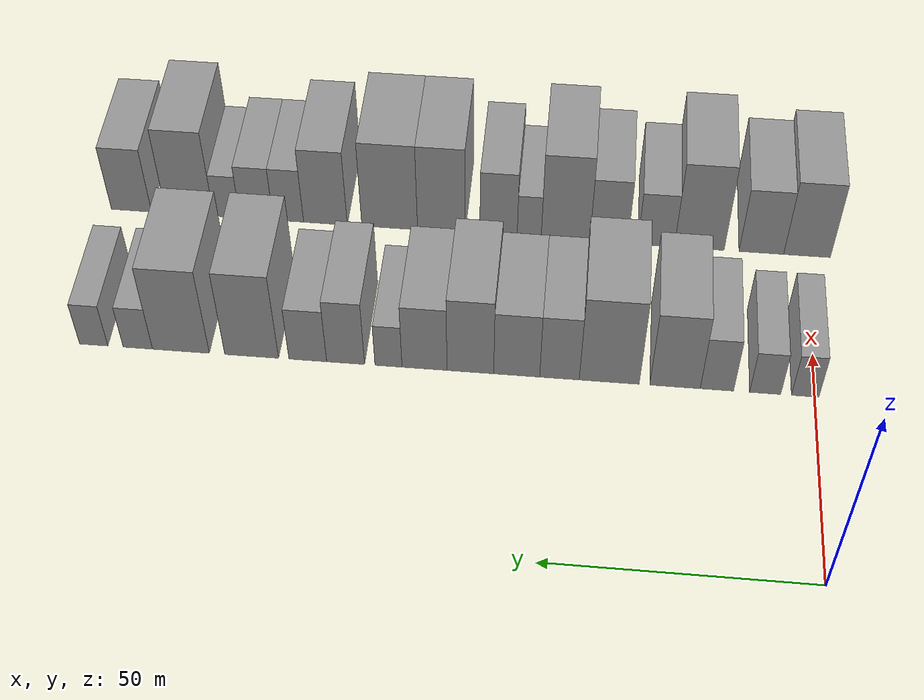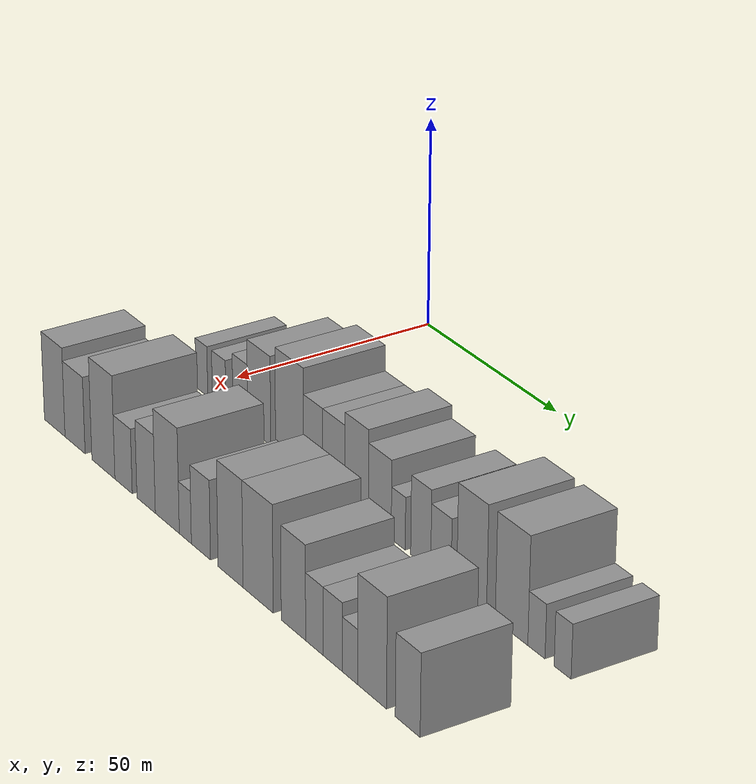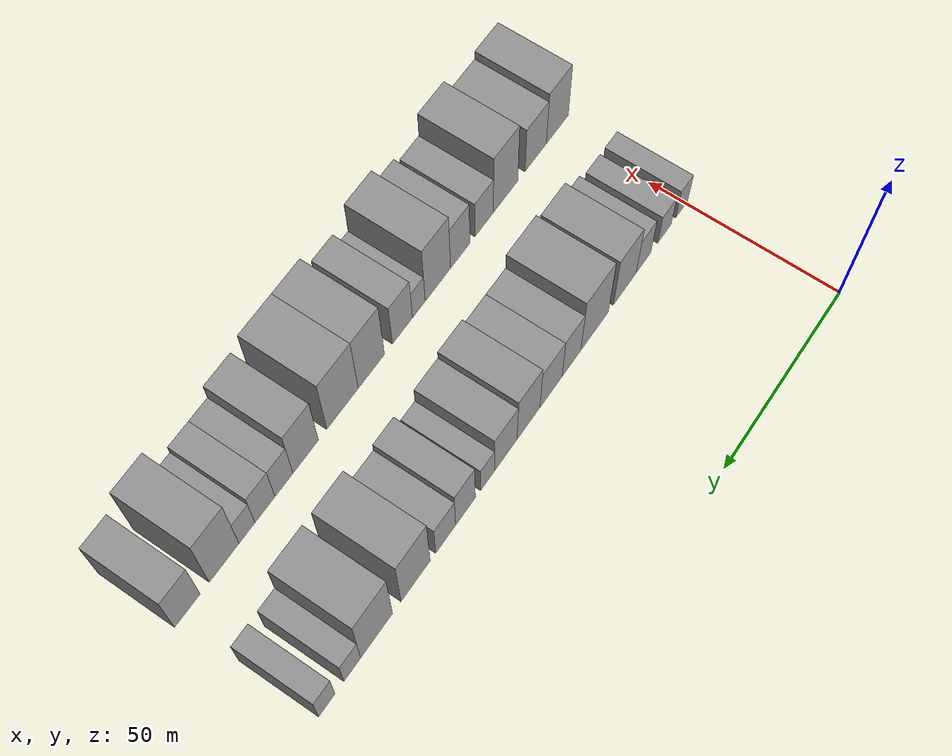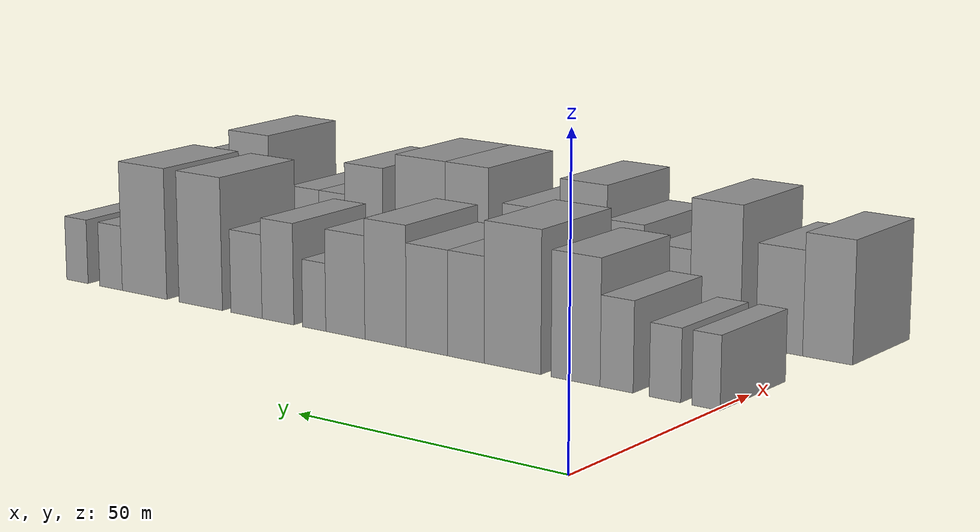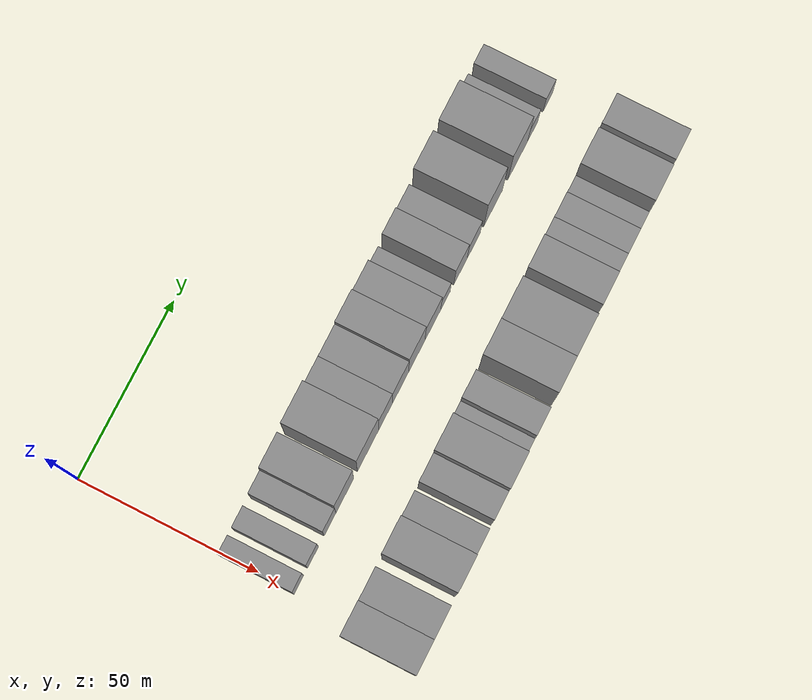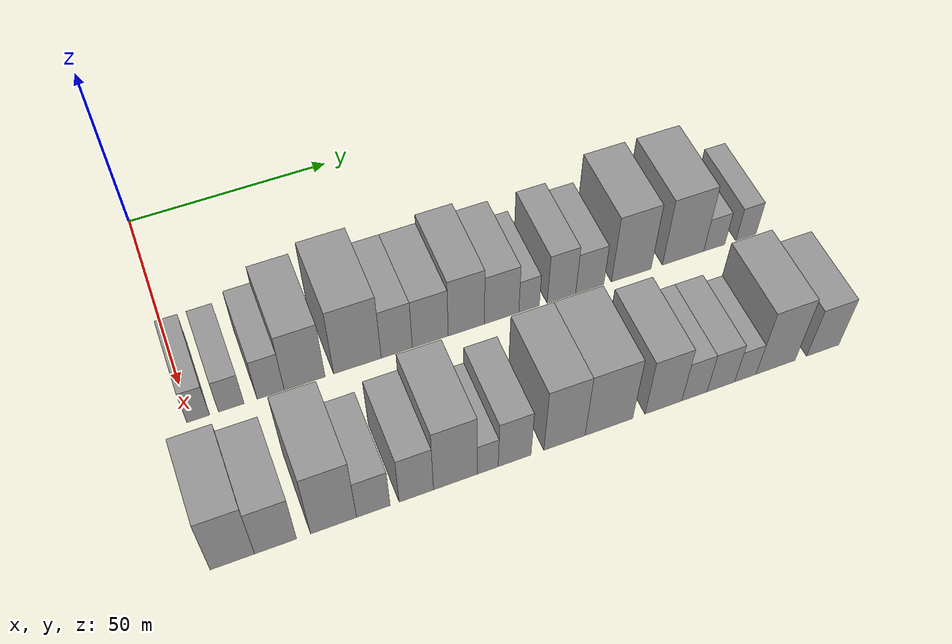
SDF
<sdf version="1.6">
 <world name="default">
  <model name="building_34">
   <static>1</static>
   <pose>50.0000 1.8342 0 0.000000 0.000000 0.000000</pose>
   <link name="link">
    <pose>0 0 6.00 0 0 0</pose>
    <collision name="collision"><geometry><box><size>20.0000 5.1160 12.0000</size></box></geometry></collision>
    <visual name="visual">
     <cast_shadows>0</cast_shadows>
     <geometry><box><size>20.0000 5.1160 12.0000</size></box></geometry>
     <material>
      <script>
       <uri>model://grey_wall/materials/scripts</uri>
       <uri>model://grey_wall/materials/textures</uri>
       <name>vrc/grey_wall</name>
      </script>
     </material>
    </visual>
   </link>
  </model>
  <model name="building_35">
   <static>1</static>
   <pose>50.0000 9.2959 0 0.000000 0.000000 0.000000</pose>
   <link name="link">
    <pose>0 0 6.00 0 0 0</pose>
    <collision name="collision"><geometry><box><size>20.0000 5.8074 12.0000</size></box></geometry></collision>
    <visual name="visual">
     <cast_shadows>0</cast_shadows>
     <geometry><box><size>20.0000 5.8074 12.0000</size></box></geometry>
     <material>
      <script>
       <uri>model://grey_wall/materials/scripts</uri>
       <uri>model://grey_wall/materials/textures</uri>
       <name>vrc/grey_wall</name>
      </script>
     </material>
    </visual>
   </link>
  </model>
  <model name="building_36">
   <static>1</static>
   <pose>50.0000 18.3228 0 0.000000 0.000000 0.000000</pose>
   <link name="link">
    <pose>0 0 7.50 0 0 0</pose>
    <collision name="collision"><geometry><box><size>20.0000 6.2464 15.0000</size></box></geometry></collision>
    <visual name="visual">
     <cast_shadows>0</cast_shadows>
     <geometry><box><size>20.0000 6.2464 15.0000</size></box></geometry>
     <material>
      <script>
       <uri>model://grey_wall/materials/scripts</uri>
       <uri>model://grey_wall/materials/textures</uri>
       <name>vrc/grey_wall</name>
      </script>
     </material>
    </visual>
   </link>
  </model>
  <model name="building_37">
   <static>1</static>
   <pose>50.0000 26.1882 0 0.000000 0.000000 0.000000</pose>
   <link name="link">
    <pose>0 0 10.50 0 0 0</pose>
    <collision name="collision"><geometry><box><size>20.0000 9.4845 21.0000</size></box></geometry></collision>
    <visual name="visual">
     <cast_shadows>0</cast_shadows>
     <geometry><box><size>20.0000 9.4845 21.0000</size></box></geometry>
     <material>
      <script>
       <uri>model://grey_wall/materials/scripts</uri>
       <uri>model://grey_wall/materials/textures</uri>
       <name>vrc/grey_wall</name>
      </script>
     </material>
    </visual>
   </link>
  </model>
  <model name="building_38">
   <static>1</static>
   <pose>50.0000 38.5877 0 0.000000 0.000000 0.000000</pose>
   <link name="link">
    <pose>0 0 12.00 0 0 0</pose>
    <collision name="collision"><geometry><box><size>20.0000 11.3144 24.0000</size></box></geometry></collision>
    <visual name="visual">
     <cast_shadows>0</cast_shadows>
     <geometry><box><size>20.0000 11.3144 24.0000</size></box></geometry>
     <material>
      <script>
       <uri>model://grey_wall/materials/scripts</uri>
       <uri>model://grey_wall/materials/textures</uri>
       <name>vrc/grey_wall</name>
      </script>
     </material>
    </visual>
   </link>
  </model>
  <model name="building_39">
   <static>1</static>
   <pose>50.0000 47.9888 0 0.000000 0.000000 0.000000</pose>
   <link name="link">
    <pose>0 0 9.00 0 0 0</pose>
    <collision name="collision"><geometry><box><size>20.0000 7.4880 18.0000</size></box></geometry></collision>
    <visual name="visual">
     <cast_shadows>0</cast_shadows>
     <geometry><box><size>20.0000 7.4880 18.0000</size></box></geometry>
     <material>
      <script>
       <uri>model://grey_wall/materials/scripts</uri>
       <uri>model://grey_wall/materials/textures</uri>
       <name>vrc/grey_wall</name>
      </script>
     </material>
    </visual>
   </link>
  </model>
  <model name="building_40">
   <static>1</static>
   <pose>50.0000 56.1021 0 0.000000 0.000000 0.000000</pose>
   <link name="link">
    <pose>0 0 9.00 0 0 0</pose>
    <collision name="collision"><geometry><box><size>20.0000 8.7385 18.0000</size></box></geometry></collision>
    <visual name="visual">
     <cast_shadows>0</cast_shadows>
     <geometry><box><size>20.0000 8.7385 18.0000</size></box></geometry>
     <material>
      <script>
       <uri>model://grey_wall/materials/scripts</uri>
       <uri>model://grey_wall/materials/textures</uri>
       <name>vrc/grey_wall</name>
      </script>
     </material>
    </visual>
   </link>
  </model>
  <model name="building_41">
   <static>1</static>
   <pose>50.0000 64.9171 0 0.000000 0.000000 0.000000</pose>
   <link name="link">
    <pose>0 0 10.50 0 0 0</pose>
    <collision name="collision"><geometry><box><size>20.0000 8.8916 21.0000</size></box></geometry></collision>
    <visual name="visual">
     <cast_shadows>0</cast_shadows>
     <geometry><box><size>20.0000 8.8916 21.0000</size></box></geometry>
     <material>
      <script>
       <uri>model://grey_wall/materials/scripts</uri>
       <uri>model://grey_wall/materials/textures</uri>
       <name>vrc/grey_wall</name>
      </script>
     </material>
    </visual>
   </link>
  </model>
  <model name="building_42">
   <static>1</static>
   <pose>50.0000 73.6666 0 0.000000 0.000000 0.000000</pose>
   <link name="link">
    <pose>0 0 9.00 0 0 0</pose>
    <collision name="collision"><geometry><box><size>20.0000 8.6075 18.0000</size></box></geometry></collision>
    <visual name="visual">
     <cast_shadows>0</cast_shadows>
     <geometry><box><size>20.0000 8.6075 18.0000</size></box></geometry>
     <material>
      <script>
       <uri>model://grey_wall/materials/scripts</uri>
       <uri>model://grey_wall/materials/textures</uri>
       <name>vrc/grey_wall</name>
      </script>
     </material>
    </visual>
   </link>
  </model>
  <model name="building_43">
   <static>1</static>
   <pose>50.0000 80.5602 0 0.000000 0.000000 0.000000</pose>
   <link name="link">
    <pose>0 0 6.00 0 0 0</pose>
    <collision name="collision"><geometry><box><size>20.0000 5.1797 12.0000</size></box></geometry></collision>
    <visual name="visual">
     <cast_shadows>0</cast_shadows>
     <geometry><box><size>20.0000 5.1797 12.0000</size></box></geometry>
     <material>
      <script>
       <uri>model://grey_wall/materials/scripts</uri>
       <uri>model://grey_wall/materials/textures</uri>
       <name>vrc/grey_wall</name>
      </script>
     </material>
    </visual>
   </link>
  </model>
  <model name="building_44">
   <static>1</static>
   <pose>50.0000 88.7926 0 0.000000 0.000000 0.000000</pose>
   <link name="link">
    <pose>0 0 9.00 0 0 0</pose>
    <collision name="collision"><geometry><box><size>20.0000 7.2850 18.0000</size></box></geometry></collision>
    <visual name="visual">
     <cast_shadows>0</cast_shadows>
     <geometry><box><size>20.0000 7.2850 18.0000</size></box></geometry>
     <material>
      <script>
       <uri>model://grey_wall/materials/scripts</uri>
       <uri>model://grey_wall/materials/textures</uri>
       <name>vrc/grey_wall</name>
      </script>
     </material>
    </visual>
   </link>
  </model>
  <model name="building_45">
   <static>1</static>
   <pose>50.0000 96.0715 0 0.000000 0.000000 0.000000</pose>
   <link name="link">
    <pose>0 0 7.50 0 0 0</pose>
    <collision name="collision"><geometry><box><size>20.0000 7.2729 15.0000</size></box></geometry></collision>
    <visual name="visual">
     <cast_shadows>0</cast_shadows>
     <geometry><box><size>20.0000 7.2729 15.0000</size></box></geometry>
     <material>
      <script>
       <uri>model://grey_wall/materials/scripts</uri>
       <uri>model://grey_wall/materials/textures</uri>
       <name>vrc/grey_wall</name>
      </script>
     </material>
    </visual>
   </link>
  </model>
  <model name="building_46">
   <static>1</static>
   <pose>50.0000 106.9145 0 0.000000 0.000000 0.000000</pose>
   <link name="link">
    <pose>0 0 12.00 0 0 0</pose>
    <collision name="collision"><geometry><box><size>20.0000 10.4130 24.0000</size></box></geometry></collision>
    <visual name="visual">
     <cast_shadows>0</cast_shadows>
     <geometry><box><size>20.0000 10.4130 24.0000</size></box></geometry>
     <material>
      <script>
       <uri>model://grey_wall/materials/scripts</uri>
       <uri>model://grey_wall/materials/textures</uri>
       <name>vrc/grey_wall</name>
      </script>
     </material>
    </visual>
   </link>
  </model>
  <model name="building_47">
   <static>1</static>
   <pose>50.0000 120.6507 0 0.000000 0.000000 0.000000</pose>
   <link name="link">
    <pose>0 0 12.00 0 0 0</pose>
    <collision name="collision"><geometry><box><size>20.0000 11.0594 24.0000</size></box></geometry></collision>
    <visual name="visual">
     <cast_shadows>0</cast_shadows>
     <geometry><box><size>20.0000 11.0594 24.0000</size></box></geometry>
     <material>
      <script>
       <uri>model://grey_wall/materials/scripts</uri>
       <uri>model://grey_wall/materials/textures</uri>
       <name>vrc/grey_wall</name>
      </script>
     </material>
    </visual>
   </link>
  </model>
  <model name="building_48">
   <static>1</static>
   <pose>50.0000 129.0398 0 0.000000 0.000000 0.000000</pose>
   <link name="link">
    <pose>0 0 6.00 0 0 0</pose>
    <collision name="collision"><geometry><box><size>20.0000 5.7189 12.0000</size></box></geometry></collision>
    <visual name="visual">
     <cast_shadows>0</cast_shadows>
     <geometry><box><size>20.0000 5.7189 12.0000</size></box></geometry>
     <material>
      <script>
       <uri>model://grey_wall/materials/scripts</uri>
       <uri>model://grey_wall/materials/textures</uri>
       <name>vrc/grey_wall</name>
      </script>
     </material>
    </visual>
   </link>
  </model>
  <model name="building_49">
   <static>1</static>
   <pose>50.0000 137.6618 0 0.000000 0.000000 0.000000</pose>
   <link name="link">
    <pose>0 0 6.00 0 0 0</pose>
    <collision name="collision"><geometry><box><size>20.0000 5.5251 12.0000</size></box></geometry></collision>
    <visual name="visual">
     <cast_shadows>0</cast_shadows>
     <geometry><box><size>20.0000 5.5251 12.0000</size></box></geometry>
     <material>
      <script>
       <uri>model://grey_wall/materials/scripts</uri>
       <uri>model://grey_wall/materials/textures</uri>
       <name>vrc/grey_wall</name>
      </script>
     </material>
    </visual>
   </link>
  </model>
  <model name="building_98">
   <static>1</static>
   <pose>85.0000 -0.0358 0 0.000000 0.000000 0.000000</pose>
   <link name="link">
    <pose>0 0 10.50 0 0 0</pose>
    <collision name="collision"><geometry><box><size>20.0000 9.3328 21.0000</size></box></geometry></collision>
    <visual name="visual">
     <cast_shadows>0</cast_shadows>
     <geometry><box><size>20.0000 9.3328 21.0000</size></box></geometry>
     <material>
      <script>
       <uri>model://grey_wall/materials/scripts</uri>
       <uri>model://grey_wall/materials/textures</uri>
       <name>vrc/grey_wall</name>
      </script>
     </material>
    </visual>
   </link>
  </model>
  <model name="building_99">
   <static>1</static>
   <pose>85.0000 9.1020 0 0.000000 0.000000 0.000000</pose>
   <link name="link">
    <pose>0 0 9.00 0 0 0</pose>
    <collision name="collision"><geometry><box><size>20.0000 8.9428 18.0000</size></box></geometry></collision>
    <visual name="visual">
     <cast_shadows>0</cast_shadows>
     <geometry><box><size>20.0000 8.9428 18.0000</size></box></geometry>
     <material>
      <script>
       <uri>model://grey_wall/materials/scripts</uri>
       <uri>model://grey_wall/materials/textures</uri>
       <name>vrc/grey_wall</name>
      </script>
     </material>
    </visual>
   </link>
  </model>
  <model name="building_100">
   <static>1</static>
   <pose>85.0000 21.5880 0 0.000000 0.000000 0.000000</pose>
   <link name="link">
    <pose>0 0 12.00 0 0 0</pose>
    <collision name="collision"><geometry><box><size>20.0000 10.0290 24.0000</size></box></geometry></collision>
    <visual name="visual">
     <cast_shadows>0</cast_shadows>
     <geometry><box><size>20.0000 10.0290 24.0000</size></box></geometry>
     <material>
      <script>
       <uri>model://grey_wall/materials/scripts</uri>
       <uri>model://grey_wall/materials/textures</uri>
       <name>vrc/grey_wall</name>
      </script>
     </material>
    </visual>
   </link>
  </model>
  <model name="building_101">
   <static>1</static>
   <pose>85.0000 30.3032 0 0.000000 0.000000 0.000000</pose>
   <link name="link">
    <pose>0 0 7.50 0 0 0</pose>
    <collision name="collision"><geometry><box><size>20.0000 7.4014 15.0000</size></box></geometry></collision>
    <visual name="visual">
     <cast_shadows>0</cast_shadows>
     <geometry><box><size>20.0000 7.4014 15.0000</size></box></geometry>
     <material>
      <script>
       <uri>model://grey_wall/materials/scripts</uri>
       <uri>model://grey_wall/materials/textures</uri>
       <name>vrc/grey_wall</name>
      </script>
     </material>
    </visual>
   </link>
  </model>
  <model name="building_102">
   <static>1</static>
   <pose>85.0000 39.8490 0 0.000000 0.000000 0.000000</pose>
   <link name="link">
    <pose>0 0 9.00 0 0 0</pose>
    <collision name="collision"><geometry><box><size>20.0000 7.6903 18.0000</size></box></geometry></collision>
    <visual name="visual">
     <cast_shadows>0</cast_shadows>
     <geometry><box><size>20.0000 7.6903 18.0000</size></box></geometry>
     <material>
      <script>
       <uri>model://grey_wall/materials/scripts</uri>
       <uri>model://grey_wall/materials/textures</uri>
       <name>vrc/grey_wall</name>
      </script>
     </material>
    </visual>
   </link>
  </model>
  <model name="building_103">
   <static>1</static>
   <pose>85.0000 48.6311 0 0.000000 0.000000 0.000000</pose>
   <link name="link">
    <pose>0 0 12.00 0 0 0</pose>
    <collision name="collision"><geometry><box><size>20.0000 9.8739 24.0000</size></box></geometry></collision>
    <visual name="visual">
     <cast_shadows>0</cast_shadows>
     <geometry><box><size>20.0000 9.8739 24.0000</size></box></geometry>
     <material>
      <script>
       <uri>model://grey_wall/materials/scripts</uri>
       <uri>model://grey_wall/materials/textures</uri>
       <name>vrc/grey_wall</name>
      </script>
     </material>
    </visual>
   </link>
  </model>
  <model name="building_104">
   <static>1</static>
   <pose>85.0000 56.0130 0 0.000000 0.000000 0.000000</pose>
   <link name="link">
    <pose>0 0 6.00 0 0 0</pose>
    <collision name="collision"><geometry><box><size>20.0000 4.8899 12.0000</size></box></geometry></collision>
    <visual name="visual">
     <cast_shadows>0</cast_shadows>
     <geometry><box><size>20.0000 4.8899 12.0000</size></box></geometry>
     <material>
      <script>
       <uri>model://grey_wall/materials/scripts</uri>
       <uri>model://grey_wall/materials/textures</uri>
       <name>vrc/grey_wall</name>
      </script>
     </material>
    </visual>
   </link>
  </model>
  <model name="building_105">
   <static>1</static>
   <pose>85.0000 62.2672 0 0.000000 0.000000 0.000000</pose>
   <link name="link">
    <pose>0 0 9.00 0 0 0</pose>
    <collision name="collision"><geometry><box><size>20.0000 7.6184 18.0000</size></box></geometry></collision>
    <visual name="visual">
     <cast_shadows>0</cast_shadows>
     <geometry><box><size>20.0000 7.6184 18.0000</size></box></geometry>
     <material>
      <script>
       <uri>model://grey_wall/materials/scripts</uri>
       <uri>model://grey_wall/materials/textures</uri>
       <name>vrc/grey_wall</name>
      </script>
     </material>
    </visual>
   </link>
  </model>
  <model name="building_106">
   <static>1</static>
   <pose>85.0000 73.9547 0 0.000000 0.000000 0.000000</pose>
   <link name="link">
    <pose>0 0 12.00 0 0 0</pose>
    <collision name="collision"><geometry><box><size>20.0000 9.7567 24.0000</size></box></geometry></collision>
    <visual name="visual">
     <cast_shadows>0</cast_shadows>
     <geometry><box><size>20.0000 9.7567 24.0000</size></box></geometry>
     <material>
      <script>
       <uri>model://grey_wall/materials/scripts</uri>
       <uri>model://grey_wall/materials/textures</uri>
       <name>vrc/grey_wall</name>
      </script>
     </material>
    </visual>
   </link>
  </model>
  <model name="building_107">
   <static>1</static>
   <pose>85.0000 84.5637 0 0.000000 0.000000 0.000000</pose>
   <link name="link">
    <pose>0 0 12.00 0 0 0</pose>
    <collision name="collision"><geometry><box><size>20.0000 11.4613 24.0000</size></box></geometry></collision>
    <visual name="visual">
     <cast_shadows>0</cast_shadows>
     <geometry><box><size>20.0000 11.4613 24.0000</size></box></geometry>
     <material>
      <script>
       <uri>model://grey_wall/materials/scripts</uri>
       <uri>model://grey_wall/materials/textures</uri>
       <name>vrc/grey_wall</name>
      </script>
     </material>
    </visual>
   </link>
  </model>
  <model name="building_108">
   <static>1</static>
   <pose>85.0000 97.8060 0 0.000000 0.000000 0.000000</pose>
   <link name="link">
    <pose>0 0 10.50 0 0 0</pose>
    <collision name="collision"><geometry><box><size>20.0000 9.0234 21.0000</size></box></geometry></collision>
    <visual name="visual">
     <cast_shadows>0</cast_shadows>
     <geometry><box><size>20.0000 9.0234 21.0000</size></box></geometry>
     <material>
      <script>
       <uri>model://grey_wall/materials/scripts</uri>
       <uri>model://grey_wall/materials/textures</uri>
       <name>vrc/grey_wall</name>
      </script>
     </material>
    </visual>
   </link>
  </model>
  <model name="building_109">
   <static>1</static>
   <pose>85.0000 105.4584 0 0.000000 0.000000 0.000000</pose>
   <link name="link">
    <pose>0 0 7.50 0 0 0</pose>
    <collision name="collision"><geometry><box><size>20.0000 6.2814 15.0000</size></box></geometry></collision>
    <visual name="visual">
     <cast_shadows>0</cast_shadows>
     <geometry><box><size>20.0000 6.2814 15.0000</size></box></geometry>
     <material>
      <script>
       <uri>model://grey_wall/materials/scripts</uri>
       <uri>model://grey_wall/materials/textures</uri>
       <name>vrc/grey_wall</name>
      </script>
     </material>
    </visual>
   </link>
  </model>
  <model name="building_110">
   <static>1</static>
   <pose>85.0000 112.0550 0 0.000000 0.000000 0.000000</pose>
   <link name="link">
    <pose>0 0 7.50 0 0 0</pose>
    <collision name="collision"><geometry><box><size>20.0000 6.9116 15.0000</size></box></geometry></collision>
    <visual name="visual">
     <cast_shadows>0</cast_shadows>
     <geometry><box><size>20.0000 6.9116 15.0000</size></box></geometry>
     <material>
      <script>
       <uri>model://grey_wall/materials/scripts</uri>
       <uri>model://grey_wall/materials/textures</uri>
       <name>vrc/grey_wall</name>
      </script>
     </material>
    </visual>
   </link>
  </model>
  <model name="building_111">
   <static>1</static>
   <pose>85.0000 118.2302 0 0.000000 0.000000 0.000000</pose>
   <link name="link">
    <pose>0 0 6.00 0 0 0</pose>
    <collision name="collision"><geometry><box><size>20.0000 5.4388 12.0000</size></box></geometry></collision>
    <visual name="visual">
     <cast_shadows>0</cast_shadows>
     <geometry><box><size>20.0000 5.4388 12.0000</size></box></geometry>
     <material>
      <script>
       <uri>model://grey_wall/materials/scripts</uri>
       <uri>model://grey_wall/materials/textures</uri>
       <name>vrc/grey_wall</name>
      </script>
     </material>
    </visual>
   </link>
  </model>
  <model name="building_112">
   <static>1</static>
   <pose>85.0000 125.9556 0 0.000000 0.000000 0.000000</pose>
   <link name="link">
    <pose>0 0 12.00 0 0 0</pose>
    <collision name="collision"><geometry><box><size>20.0000 10.0120 24.0000</size></box></geometry></collision>
    <visual name="visual">
     <cast_shadows>0</cast_shadows>
     <geometry><box><size>20.0000 10.0120 24.0000</size></box></geometry>
     <material>
      <script>
       <uri>model://grey_wall/materials/scripts</uri>
       <uri>model://grey_wall/materials/textures</uri>
       <name>vrc/grey_wall</name>
      </script>
     </material>
    </visual>
   </link>
  </model>
  <model name="building_113">
   <static>1</static>
   <pose>85.0000 138.1606 0 0.000000 0.000000 0.000000</pose>
   <link name="link">
    <pose>0 0 9.00 0 0 0</pose>
    <collision name="collision"><geometry><box><size>20.0000 8.3981 18.0000</size></box></geometry></collision>
    <visual name="visual">
     <cast_shadows>0</cast_shadows>
     <geometry><box><size>20.0000 8.3981 18.0000</size></box></geometry>
     <material>
      <script>
       <uri>model://grey_wall/materials/scripts</uri>
       <uri>model://grey_wall/materials/textures</uri>
       <name>vrc/grey_wall</name>
      </script>
     </material>
    </visual>
   </link>
  </model>
 </world>
</sdf>
